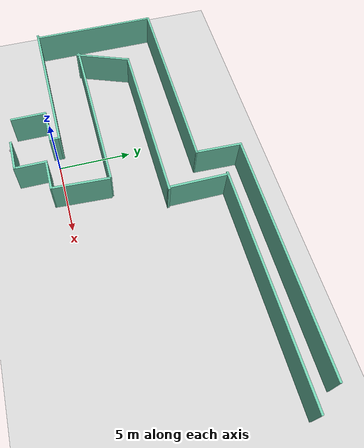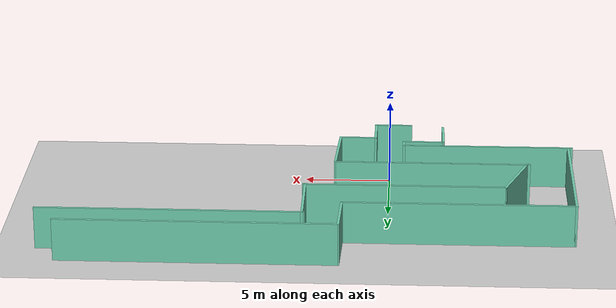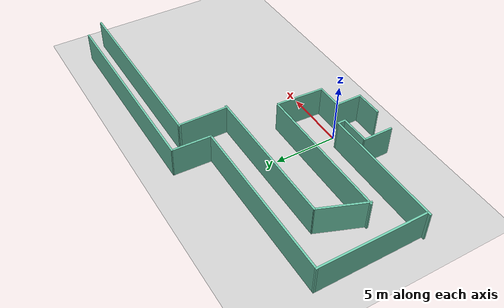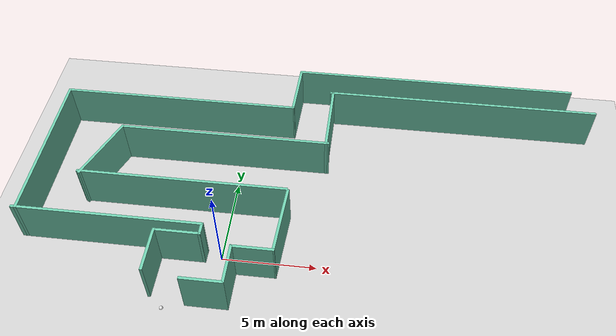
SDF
<sdf version="1.7">
 <world name="default">
  <plugin name="hello" filename="libhello.so"/>
  <model name="ground_plane">
   <static>1</static>
   <link name="link">
    <collision name="collision">
     <geometry><plane><normal>0 0 1</normal><size>100 100</size></plane></geometry>
     <surface>
      <contact><collide_bitmask>65535</collide_bitmask></contact>
      <friction><ode><mu>100</mu><mu2>50</mu2></ode></friction>
     </surface>
    </collision>
    <visual name="visual">
     <cast_shadows>0</cast_shadows>
     <geometry><plane><normal>0 0 1</normal><size>100 100</size></plane></geometry>
     <material>
      <script><uri>file://media/materials/scripts/gazebo.material</uri><name>Gazebo/Grey</name></script>
     </material>
    </visual>
   </link>
  </model>
  <light name="sun" type="directional">
   <pose>0 0 10 0 -0 0</pose>
   <diffuse>0.8 0.8 0.8 1</diffuse>
   <specular>0.2 0.2 0.2 1</specular>
   <attenuation>
    <range>1000</range>
    <constant>0.9</constant>
    <linear>0.01</linear>
    <quadratic>0.001</quadratic>
   </attenuation>
   <direction>-0.5 0.1 -0.9</direction>
   <spot><inner_angle>0</inner_angle><outer_angle>0</outer_angle><falloff>0</falloff></spot>
  </light>
  <scene>
   <sky><clouds><speed>12</speed></clouds></sky>
   <ambient>0.95 0.95 0.95 1</ambient>
   <background>0.3 0.3 0.3 1</background>
   <shadows>1</shadows>
  </scene>
  <gravity>0 0 -9.8066</gravity>
  <magnetic_field>6e-06 2.3e-05 -4.2e-05</magnetic_field>
  <atmosphere type="adiabatic"/>
  <physics type="ode">
   <max_step_size>0.001</max_step_size>
   <real_time_factor>1</real_time_factor>
   <real_time_update_rate>1000</real_time_update_rate>
  </physics>
  <scene><ambient>0.4 0.4 0.4 1</ambient><background>0.7 0.7 0.7 1</background><shadows>1</shadows></scene>
  <spherical_coordinates>
   <surface_model>EARTH_WGS84</surface_model>
   <latitude_deg>40.3803</latitude_deg>
   <longitude_deg>-3.92382</longitude_deg>
   <elevation>600</elevation>
   <heading_deg>0</heading_deg>
  </spherical_coordinates>
  <model name="parkmaze">
   <pose>4.46964 4.6679 0 0 -0 0</pose>
   <link name="Wall_0">
    <collision name="Wall_0_Collision">
     <geometry><box><size>2.25 0.15 2.5</size></box></geometry>
     <pose>0 0 1.25 0 -0 0</pose>
    </collision>
    <visual name="Wall_0_Visual">
     <pose>0 0 1.25 0 -0 0</pose>
     <geometry><box><size>2.25 0.15 2.5</size></box></geometry>
     <material>
      <script><uri>file://media/materials/scripts/gazebo.material</uri><name>Gazebo/Grey</name></script>
      <ambient>0.435294 0.796078 0.67451 1</ambient>
     </material>
     <meta><layer>0</layer></meta>
    </visual>
    <pose>-4.67121 -7.5279 0 0 -0 0</pose>
   </link>
   <link name="Wall_1">
    <collision name="Wall_1_Collision">
     <geometry><box><size>2.25 0.15 2.5</size></box></geometry>
     <pose>0 0 1.25 0 -0 0</pose>
    </collision>
    <visual name="Wall_1_Visual">
     <pose>0 0 1.25 0 -0 0</pose>
     <geometry><box><size>2.25 0.15 2.5</size></box></geometry>
     <material>
      <script><uri>file://media/materials/scripts/gazebo.material</uri><name>Gazebo/Grey</name></script>
      <ambient>0.435294 0.796078 0.67451 1</ambient>
     </material>
     <meta><layer>0</layer></meta>
    </visual>
    <pose>-3.62121 -6.4779 0 0 -0 1.5708</pose>
   </link>
   <link name="Wall_10">
    <collision name="Wall_10_Collision">
     <geometry><box><size>2.5 0.15 2.5</size></box></geometry>
     <pose>0 0 1.25 0 -0 0</pose>
    </collision>
    <visual name="Wall_10_Visual">
     <pose>0 0 1.25 0 -0 0</pose>
     <geometry><box><size>2.5 0.15 2.5</size></box></geometry>
     <material>
      <script><uri>file://media/materials/scripts/gazebo.material</uri><name>Gazebo/Grey</name></script>
      <ambient>0.435294 0.796078 0.67451 1</ambient>
     </material>
     <meta><layer>0</layer></meta>
    </visual>
    <pose>-7.67661 -6.04728 0 0 -0 1.5708</pose>
   </link>
   <link name="Wall_11">
    <collision name="Wall_11_Collision">
     <geometry><box><size>2.5 0.15 2.5</size></box></geometry>
     <pose>0 0 1.25 0 -0 0</pose>
    </collision>
    <visual name="Wall_11_Visual">
     <pose>0 0 1.25 0 -0 0</pose>
     <geometry><box><size>2.5 0.15 2.5</size></box></geometry>
     <material>
      <script><uri>file://media/materials/scripts/gazebo.material</uri><name>Gazebo/Grey</name></script>
      <ambient>0.435294 0.796078 0.67451 1</ambient>
     </material>
     <meta><layer>0</layer></meta>
    </visual>
    <pose>-6.50161 -4.87228 0 0 -0 0</pose>
   </link>
   <link name="Wall_12">
    <collision name="Wall_12_Collision">
     <geometry><box><size>0.75 0.15 2.5</size></box></geometry>
     <pose>0 0 1.25 0 -0 0</pose>
    </collision>
    <visual name="Wall_12_Visual">
     <pose>0 0 1.25 0 -0 0</pose>
     <geometry><box><size>0.75 0.15 2.5</size></box></geometry>
     <material>
      <script><uri>file://media/materials/scripts/gazebo.material</uri><name>Gazebo/Grey</name></script>
      <ambient>0.435294 0.796078 0.67451 1</ambient>
     </material>
     <meta><layer>0</layer></meta>
    </visual>
    <pose>-5.32661 -4.57228 0 0 -0 1.5708</pose>
   </link>
   <link name="Wall_13">
    <collision name="Wall_13_Collision">
     <geometry><box><size>10.1196 0.15 2.5</size></box></geometry>
     <pose>0 0 1.25 0 -0 0</pose>
    </collision>
    <visual name="Wall_13_Visual">
     <pose>0 0 1.25 0 -0 0</pose>
     <geometry><box><size>10.1196 0.15 2.5</size></box></geometry>
     <material>
      <script><uri>file://media/materials/scripts/gazebo.material</uri><name>Gazebo/Grey</name></script>
      <ambient>0.435294 0.796078 0.67451 1</ambient>
     </material>
     <meta><layer>0</layer></meta>
    </visual>
    <pose>-10.3114 -4.27228 0 0 -0 3.14159</pose>
   </link>
   <link name="Wall_14">
    <collision name="Wall_14_Collision">
     <geometry><box><size>8.88044 0.15 2.5</size></box></geometry>
     <pose>0 0 1.25 0 -0 0</pose>
    </collision>
    <visual name="Wall_14_Visual">
     <pose>0 0 1.25 0 -0 0</pose>
     <geometry><box><size>8.88044 0.15 2.5</size></box></geometry>
     <material>
      <script><uri>file://media/materials/scripts/gazebo.material</uri><name>Gazebo/Grey</name></script>
      <ambient>0.435294 0.796078 0.67451 1</ambient>
     </material>
     <meta><layer>0</layer></meta>
    </visual>
    <pose>-15.1005 0.092937 0 0 -0 1.5708</pose>
   </link>
   <link name="Wall_15">
    <collision name="Wall_15_Collision">
     <geometry><box><size>13.3696 0.15 2.5</size></box></geometry>
     <pose>0 0 1.25 0 -0 0</pose>
    </collision>
    <visual name="Wall_15_Visual">
     <pose>0 0 1.25 0 -0 0</pose>
     <geometry><box><size>13.3696 0.15 2.5</size></box></geometry>
     <material>
      <script><uri>file://media/materials/scripts/gazebo.material</uri><name>Gazebo/Grey</name></script>
      <ambient>0.435294 0.796078 0.67451 1</ambient>
     </material>
     <meta><layer>0</layer></meta>
    </visual>
    <pose>-8.49074 4.45815 0 0 -0 0</pose>
   </link>
   <link name="Wall_16">
    <collision name="Wall_16_Collision">
     <geometry><box><size>3.21895 0.15 2.5</size></box></geometry>
     <pose>0 0 1.25 0 -0 0</pose>
    </collision>
    <visual name="Wall_16_Visual">
     <pose>0 0 1.25 0 -0 0</pose>
     <geometry><box><size>3.21895 0.15 2.5</size></box></geometry>
     <material>
      <script><uri>file://media/materials/scripts/gazebo.material</uri><name>Gazebo/Grey</name></script>
      <ambient>0.435294 0.796078 0.67451 1</ambient>
     </material>
     <meta><layer>0</layer></meta>
    </visual>
    <pose>-1.83205 5.99185 0 0 -0 1.53892</pose>
   </link>
   <link name="Wall_17">
    <collision name="Wall_17_Collision">
     <geometry><box><size>16 0.15 2.5</size></box></geometry>
     <pose>0 0 1.25 0 -0 0</pose>
    </collision>
    <visual name="Wall_17_Visual">
     <pose>0 0 1.25 0 -0 0</pose>
     <geometry><box><size>16 0.15 2.5</size></box></geometry>
     <material>
      <script><uri>file://media/materials/scripts/gazebo.material</uri><name>Gazebo/Grey</name></script>
      <ambient>0.435294 0.796078 0.67451 1</ambient>
     </material>
     <meta><layer>0</layer></meta>
    </visual>
    <pose>6.14187 7.52555 0 0 -0 0</pose>
   </link>
   <link name="Wall_2">
    <collision name="Wall_2_Collision">
     <geometry><box><size>2.25 0.15 2.5</size></box></geometry>
     <pose>0 0 1.25 0 -0 0</pose>
    </collision>
    <visual name="Wall_2_Visual">
     <pose>0 0 1.25 0 -0 0</pose>
     <geometry><box><size>2.25 0.15 2.5</size></box></geometry>
     <material>
      <script><uri>file://media/materials/scripts/gazebo.material</uri><name>Gazebo/Grey</name></script>
      <ambient>0.435294 0.796078 0.67451 1</ambient>
     </material>
     <meta><layer>0</layer></meta>
    </visual>
    <pose>-2.57121 -5.4279 0 0 -0 0</pose>
   </link>
   <link name="Wall_3">
    <collision name="Wall_3_Collision">
     <geometry><box><size>3.93984 0.15 2.5</size></box></geometry>
     <pose>0 0 1.25 0 -0 0</pose>
    </collision>
    <visual name="Wall_3_Visual">
     <pose>0 0 1.25 0 -0 0</pose>
     <geometry><box><size>3.93984 0.15 2.5</size></box></geometry>
     <material>
      <script><uri>file://media/materials/scripts/gazebo.material</uri><name>Gazebo/Grey</name></script>
      <ambient>0.435294 0.796078 0.67451 1</ambient>
     </material>
     <meta><layer>0</layer></meta>
    </visual>
    <pose>-1.42339 -3.53551 0 0 -0 1.51915</pose>
   </link>
   <link name="Wall_4">
    <collision name="Wall_4_Collision">
     <geometry><box><size>11.4022 0.15 2.5</size></box></geometry>
     <pose>0 0 1.25 0 -0 0</pose>
    </collision>
    <visual name="Wall_4_Visual">
     <pose>0 0 1.25 0 -0 0</pose>
     <geometry><box><size>11.4022 0.15 2.5</size></box></geometry>
     <material>
      <script><uri>file://media/materials/scripts/gazebo.material</uri><name>Gazebo/Grey</name></script>
      <ambient>0.435294 0.796078 0.67451 1</ambient>
     </material>
     <meta><layer>0</layer></meta>
    </visual>
    <pose>-7.04947 -1.54529 0 0 -0 3.14159</pose>
   </link>
   <link name="Wall_5">
    <collision name="Wall_5_Collision">
     <geometry><box><size>3.97126 0.15 2.5</size></box></geometry>
     <pose>0 0 1.25 0 -0 0</pose>
    </collision>
    <visual name="Wall_5_Visual">
     <pose>0 0 1.25 0 -0 0</pose>
     <geometry><box><size>3.97126 0.15 2.5</size></box></geometry>
     <material>
      <script><uri>file://media/materials/scripts/gazebo.material</uri><name>Gazebo/Grey</name></script>
      <ambient>0.435294 0.796078 0.67451 1</ambient>
     </material>
     <meta><layer>0</layer></meta>
    </visual>
    <pose>-11.893 0.140581 0 0 -0 1.20423</pose>
   </link>
   <link name="Wall_6">
    <collision name="Wall_6_Collision">
     <geometry><box><size>11.75 0.15 2.5</size></box></geometry>
     <pose>0 0 1.25 0 -0 0</pose>
    </collision>
    <visual name="Wall_6_Visual">
     <pose>0 0 1.25 0 -0 0</pose>
     <geometry><box><size>11.75 0.15 2.5</size></box></geometry>
     <material>
      <script><uri>file://media/materials/scripts/gazebo.material</uri><name>Gazebo/Grey</name></script>
      <ambient>0.435294 0.796078 0.67451 1</ambient>
     </material>
     <meta><layer>0</layer></meta>
    </visual>
    <pose>-5.40817 1.92428 0 0 -0 0</pose>
   </link>
   <link name="Wall_7">
    <collision name="Wall_7_Collision">
     <geometry><box><size>4.16304 0.15 2.5</size></box></geometry>
     <pose>0 0 1.25 0 -0 0</pose>
    </collision>
    <visual name="Wall_7_Visual">
     <pose>0 0 1.25 0 -0 0</pose>
     <geometry><box><size>4.16304 0.15 2.5</size></box></geometry>
     <material>
      <script><uri>file://media/materials/scripts/gazebo.material</uri><name>Gazebo/Grey</name></script>
      <ambient>0.435294 0.796078 0.67451 1</ambient>
     </material>
     <meta><layer>0</layer></meta>
    </visual>
    <pose>0.294004 3.9308 0 0 -0 1.5708</pose>
   </link>
   <link name="Wall_8">
    <collision name="Wall_8_Collision">
     <geometry><box><size>15.25 0.15 2.5</size></box></geometry>
     <pose>0 0 1.25 0 -0 0</pose>
    </collision>
    <visual name="Wall_8_Visual">
     <pose>0 0 1.25 0 -0 0</pose>
     <geometry><box><size>15.25 0.15 2.5</size></box></geometry>
     <material>
      <script><uri>file://media/materials/scripts/gazebo.material</uri><name>Gazebo/Grey</name></script>
      <ambient>0.435294 0.796078 0.67451 1</ambient>
     </material>
     <meta><layer>0</layer></meta>
    </visual>
    <pose>7.74618 5.93732 0 0 -0 0</pose>
   </link>
   <static>1</static>
  </model>
  <model name="my_ball">
   <link name="link">
    <inertial>
     <mass>1</mass>
     <inertia><ixx>0.1</ixx><ixy>0</ixy><ixz>0</ixz><iyy>0.1</iyy><iyz>0</iyz><izz>0.1</izz></inertia>
    </inertial>
    <visual name="visual">
     <geometry><sphere><radius>0.1</radius></sphere></geometry>
     <material>
      <script><name>Gazebo/White</name><uri>file://media/materials/scripts/gazebo.material</uri></script>
     </material>
    </visual>
    <collision name="collision">
     <geometry><sphere><radius>0.1</radius></sphere></geometry>
     <surface>
      <friction>
       <ode><mu>1</mu><mu2>1</mu2><fdir1>0 0 0</fdir1><slip1>0</slip1><slip2>0</slip2></ode>
       <torsional>
        <coefficient>1</coefficient>
        <patch_radius>0</patch_radius>
        <surface_radius>0</surface_radius>
        <use_patch_radius>1</use_patch_radius>
        <ode><slip>0</slip></ode>
       </torsional>
      </friction>
      <bounce><restitution_coefficient>0</restitution_coefficient><threshold>1e+06</threshold></bounce>
      <contact>
       <collide_without_contact>0</collide_without_contact>
       <collide_without_contact_bitmask>1</collide_without_contact_bitmask>
       <collide_bitmask>1</collide_bitmask>
       <ode>
        <soft_cfm>0</soft_cfm>
        <soft_erp>0.2</soft_erp>
        <kp>1e+13</kp>
        <kd>1</kd>
        <max_vel>0.01</max_vel>
        <min_depth>0</min_depth>
       </ode>
       <bullet>
        <split_impulse>1</split_impulse>
        <split_impulse_penetration_threshold>-0.01</split_impulse_penetration_threshold>
        <soft_cfm>0</soft_cfm>
        <soft_erp>0.2</soft_erp>
        <kp>1e+13</kp>
        <kd>1</kd>
       </bullet>
      </contact>
     </surface>
    </collision>
   </link>
   <static>0</static>
   <pose>-2.43461 -3.23431 0.073935 0 -0 0</pose>
  </model>
 </world>
</sdf>
